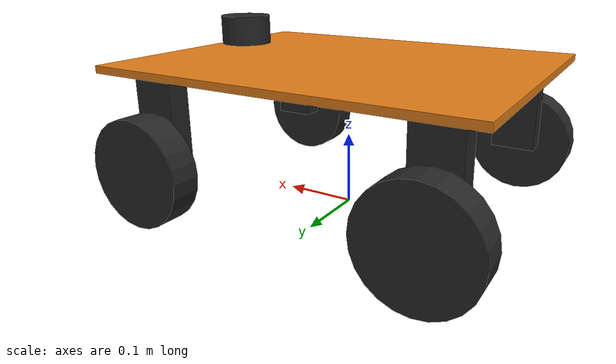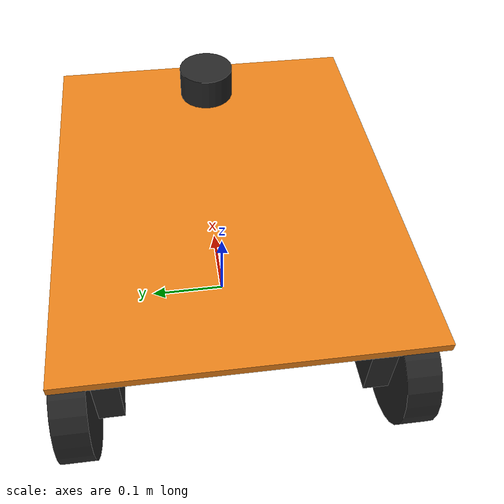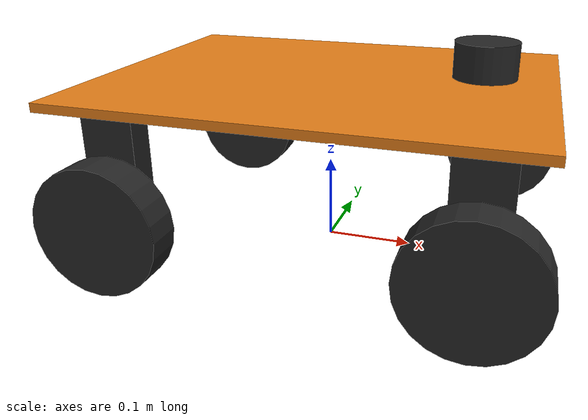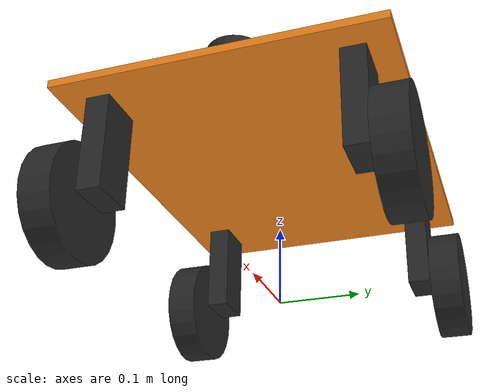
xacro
<?xml version="1.0"?>
<robot name="humanoi_base" xmlns:xacro="http://www.ros.org/wiki/xacro">

  <xacro:property name="base_x"    value="0.51"/>   <!-- A: ยาว (หน้า-หลัง) -->
  <xacro:property name="base_y"    value="0.40"/>   <!-- กว้าง (ซ้าย-ขวา) — ยังไม่ได้วัด -->
  <xacro:property name="base_z"    value="0.01"/>   <!-- B: ฐานเป็นแผ่นหนา 1 cm -->
  <xacro:property name="plate_bottom" value="0.195"/> <!-- C: พื้น -> ใต้แผ่นฐาน -->
  <xacro:property name="base_mass" value="14.0"/>   <!-- กก. (ประมาณ ฐาน+แบต) — ยังไม่ได้ชั่ง -->

  <xacro:property name="wheel_radius" value="0.0725"/> <!-- D: ล้อ Ø145 mm (วัด 28 ต.ค.) -->
  <xacro:property name="wheel_width"  value="0.04"/>   <!-- หนา 4 cm (วัดแล้ว) -->
  <xacro:property name="wheel_mass"   value="0.6"/>

  <!-- ระยะติดตั้งล้อ วัดจากจุดศูนย์กลางฐาน (ครึ่งระยะ) — คำนวณจากที่วัด 28 ต.ค.:
       กว้างรวมนอกล้อ 42.5 cm − ล้อหนา 4 = 38.5 · ยาวรวม 53 cm (ล้อยื่นสุด) − ล้อ Ø14.5 = 38.5 -->
  <xacro:property name="track_half"     value="0.1925"/>  <!-- ครึ่งระยะ ซ้าย-ขวา ระหว่างกลางล้อ -->
  <xacro:property name="wheelbase_half" value="0.1925"/>  <!-- ครึ่งระยะ หน้า-หลัง ระหว่างแกนล้อ -->
  <!-- แกนล้อ -> กึ่งกลางแผ่นฐาน (คำนวณจาก C, B, D) -->
  <xacro:property name="clearance" value="${plate_bottom + base_z / 2 - wheel_radius}"/>

  <!-- ไลดาร์ LDROBOT STL-19P: สูงจากพื้น 23.5 cm (วัดหุ่นจริง 29 ต.ค.) วางบนแผ่นฐาน -->
  <xacro:property name="lidar_z" value="0.235"/>
  <xacro:property name="lidar_x" value="0.175"/>    <!-- เท่า humanoi_base/config/lidar_mount.yaml (หุ่นจริง) -->

  <material name="hull">   <color rgba="0.90 0.50 0.10 1"/></material>
  <material name="rubber"> <color rgba="0.15 0.15 0.15 1"/></material>

  <!-- กรอบอ้างอิงบนพื้น : จุดนี้แตะพื้นพอดี (spawn ที่ -z 0) -->
  <link name="base_footprint"/>

  <joint name="chassis_joint" type="fixed">
    <parent link="base_footprint"/>
    <child  link="chassis_link"/>
    <origin xyz="0 0 ${wheel_radius + clearance}" rpy="0 0 0"/>
  </joint>

  <link name="chassis_link">
    <visual>
      <geometry><box size="${base_x} ${base_y} ${base_z}"/></geometry>
      <material name="hull"/>
    </visual>
    <!-- ขายึดมอเตอร์ล้อใต้แผ่นฐาน (ดูอย่างเดียว ขนาดประมาณ) — แผ่นอยู่สูงกว่ายอดล้อ 4.5 cm -->
    <xacro:macro name="wheel_bracket" params="x y">
      <visual>
        <origin xyz="${x} ${y} ${-(clearance + base_z / 2) / 2}" rpy="0 0 0"/>
        <geometry><box size="0.06 0.03 ${clearance - base_z / 2}"/></geometry>
        <material name="rubber"/>
      </visual>
    </xacro:macro>
    <xacro:wheel_bracket x="${ wheelbase_half}" y="${ track_half - wheel_width / 2 - 0.02}"/>
    <xacro:wheel_bracket x="${ wheelbase_half}" y="${-track_half + wheel_width / 2 + 0.02}"/>
    <xacro:wheel_bracket x="${-wheelbase_half}" y="${ track_half - wheel_width / 2 - 0.02}"/>
    <xacro:wheel_bracket x="${-wheelbase_half}" y="${-track_half + wheel_width / 2 + 0.02}"/>
    <collision>
      <geometry><box size="${base_x} ${base_y} ${base_z}"/></geometry>
    </collision>
    <inertial>
      <mass value="${base_mass}"/>
      <inertia
        ixx="${base_mass*(base_y*base_y + base_z*base_z)/12.0}" ixy="0.0" ixz="0.0"
        iyy="${base_mass*(base_x*base_x + base_z*base_z)/12.0}" iyz="0.0"
        izz="${base_mass*(base_x*base_x + base_y*base_y)/12.0}"/>
    </inertial>
  </link>

  <xacro:macro name="wheel" params="name x y">
    <link name="${name}_wheel">
      <visual>
        <origin xyz="0 0 0" rpy="1.5707963 0 0"/>
        <geometry><cylinder radius="${wheel_radius}" length="${wheel_width}"/></geometry>
        <material name="rubber"/>
      </visual>
      <collision>
        <geometry><sphere radius="${wheel_radius}"/></geometry>
      </collision>
      <inertial>
        <mass value="${wheel_mass}"/>
        <inertia
          ixx="${wheel_mass*(3*wheel_radius*wheel_radius + wheel_width*wheel_width)/12.0}" ixy="0.0" ixz="0.0"
          iyy="${wheel_mass*(3*wheel_radius*wheel_radius + wheel_width*wheel_width)/12.0}" iyz="0.0"
          izz="${wheel_mass*wheel_radius*wheel_radius/2.0}"/>
      </inertial>
    </link>
    <joint name="${name}_wheel_joint" type="continuous">
      <parent link="chassis_link"/>
      <child  link="${name}_wheel"/>
      <origin xyz="${x} ${y} ${-clearance}" rpy="0 0 0"/>
      <axis xyz="0 1 0"/>
      <dynamics damping="0.05" friction="0.0"/>
    </joint>
    <gazebo reference="${name}_wheel">
      <mu1>0.0</mu1>
      <mu2>0.0</mu2>
    </gazebo>
  </xacro:macro>

  <xacro:wheel name="front_left"  x="${ wheelbase_half}" y="${ track_half}"/>
  <xacro:wheel name="front_right" x="${ wheelbase_half}" y="${-track_half}"/>
  <xacro:wheel name="rear_left"   x="${-wheelbase_half}" y="${ track_half}"/>
  <xacro:wheel name="rear_right"  x="${-wheelbase_half}" y="${-track_half}"/>

  <link name="laser_link">
    <visual>
      <geometry><cylinder radius="0.035" length="0.04"/></geometry>
      <material name="rubber"/>
    </visual>
    <inertial>
      <mass value="0.12"/>
      <inertia ixx="1e-4" ixy="0" ixz="0" iyy="1e-4" iyz="0" izz="1e-4"/>
    </inertial>
  </link>
  <joint name="laser_joint" type="fixed">
    <parent link="chassis_link"/>
    <child  link="laser_link"/>
    <origin xyz="${lidar_x} 0 ${lidar_z - wheel_radius - clearance}" rpy="0 0 0"/>
  </joint>

  <gazebo reference="laser_link">
    <sensor name="lidar" type="gpu_lidar">
      <update_rate>10</update_rate>
      <topic>scan</topic>
      <gz_frame_id>laser_link</gz_frame_id>
      <always_on>1</always_on>
      <visualize>true</visualize>
      <lidar>
        <scan>
          <horizontal>
            <!-- 501 = 5000 จุด/วินาที ÷ 10 รอบ/วินาที + 1 (ปลายทั้งสองข้างนับซ้ำที่ 0°/360°)
                 ได้ความละเอียดเชิงมุม 0.720° เท่าของจริงเป๊ะ -->
            <samples>501</samples>
            <resolution>1</resolution>
            <min_angle>-3.141593</min_angle>
            <max_angle>3.141593</max_angle>
          </horizontal>
        </scan>
        <range>
          <!-- 0.03 m ตามสเปก STL-19P (ของเดิมตั้ง 0.15 มั่วไว้) -->
          <min>0.03</min>
          <max>12.0</max>
          <resolution>0.01</resolution>
        </range>
      </lidar>
    </sensor>
  </gazebo>

  <!-- ===================== ปลั๊กอิน Gazebo (gz-sim / Harmonic) ===================== -->
  <gazebo>
    <!-- ขยับตัวถังตาม gz.msgs.Twist ที่ /cmd_vel โดยตรง (body frame, holonomic) -->
    <plugin filename="gz-sim-velocity-control-system" name="gz::sim::systems::VelocityControl">
      <topic>cmd_vel</topic>
    </plugin>

    <!-- odom จากตำแหน่งจริงของหุ่น (3 มิติ = x, y, yaw สำหรับ holonomic) -->
    <plugin filename="gz-sim-odometry-publisher-system" name="gz::sim::systems::OdometryPublisher">
      <odom_frame>odom</odom_frame>
      <robot_base_frame>base_footprint</robot_base_frame>
      <odom_topic>odom</odom_topic>
      <tf_topic>tf</tf_topic>
      <dimensions>3</dimensions>
      <odom_publish_frequency>50</odom_publish_frequency>
    </plugin>

    <plugin filename="gz-sim-joint-state-publisher-system" name="gz::sim::systems::JointStatePublisher">
      <topic>joint_states</topic>
      <joint_name>front_left_wheel_joint</joint_name>
      <joint_name>front_right_wheel_joint</joint_name>
      <joint_name>rear_left_wheel_joint</joint_name>
      <joint_name>rear_right_wheel_joint</joint_name>
    </plugin>
  </gazebo>

</robot>
